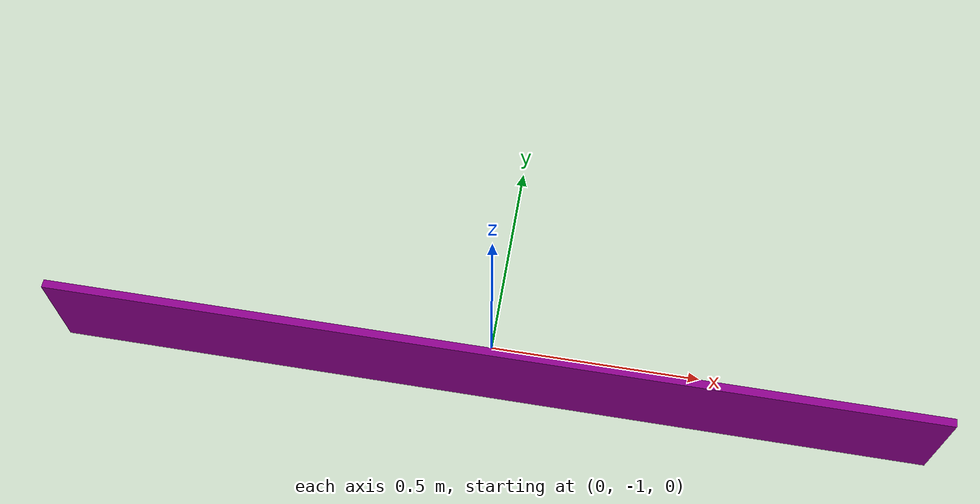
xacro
<?xml version="1.0"?>
<robot name="testbed" xmlns:xacro="http://www.ros.org/wiki/xacro">

  <!-- Colors used for testbed walls. -->
  <material name="Green">
    <color rgba="0.0 1.0 0.0 1.0"/>
  </material>

  <material name="Cyan">
    <color rgba="0.0 1.0 1.0 1.0"/>
  </material>

  <material name="Orange">
    <color rgba="1.0 0.65 0.3 1.0"/>
  </material>

  <material name="Purple">
    <color rgba="0.55 0 0.55 1.0"/>
  </material>

  <!-- Universal Values -->
  <xacro:property name="PI" value="3.14159265358979"/>

  <!-- Property List -->
  <xacro:property name="side_4_length" value="2.135"/>
  <xacro:property name="side_4_width" value="0.02"/>
  <xacro:property name="side_4_height" value="0.245"/>
  <xacro:property name="side_4_mass" value="1.0"/>
  <xacro:property name="side_4_x" value="0.0"/>
  <xacro:property name="side_4_y" value="${-2.135 / 2}"/>
  <xacro:property name="side_4_z" value="0.0"/>
  <xacro:property name="side_4_roll" value="0.0"/>
  <xacro:property name="side_4_pitch" value="0.0"/>
  <xacro:property name="side_4_yaw" value="${PI / 2}"/>

  <!-- ############################## LINKS ############################## -->

  <link name="side_4_link">
    <visual>
      <material name="Purple"/>
      <origin xyz="${side_4_x} ${side_4_y} ${side_4_z}" rpy="${side_4_roll} ${side_4_pitch} ${side_4_yaw}"/>
      <geometry>
        <box size="${side_4_width} ${side_4_length} ${side_4_height}"/>
      </geometry>
    </visual>
    <inertial>
      <mass value="${side_4_mass}"/>
      <origin xyz="${side_4_x} ${side_4_y} ${side_4_z}" rpy="${side_4_roll} ${side_4_pitch} ${side_4_yaw}"/>
      <inertia ixx="1.0" ixy="0.0" ixz="0.0" iyy="1.0" iyz="0.0" izz="1.0"/>
    </inertial>
    <collision>
      <origin xyz="${side_4_x} ${side_4_y} ${side_4_z}" rpy="${side_4_roll} ${side_4_pitch} ${side_4_yaw}"/>
      <geometry>
        <box size="${side_4_length} ${side_4_width} ${side_4_height}"/>
      </geometry>
    </collision>
  </link>

  <gazebo reference="side_4_link">
    <material>Gazebo/Orange</material>
    <turnGravityOff>false</turnGravityOff>
  </gazebo>

</robot>
